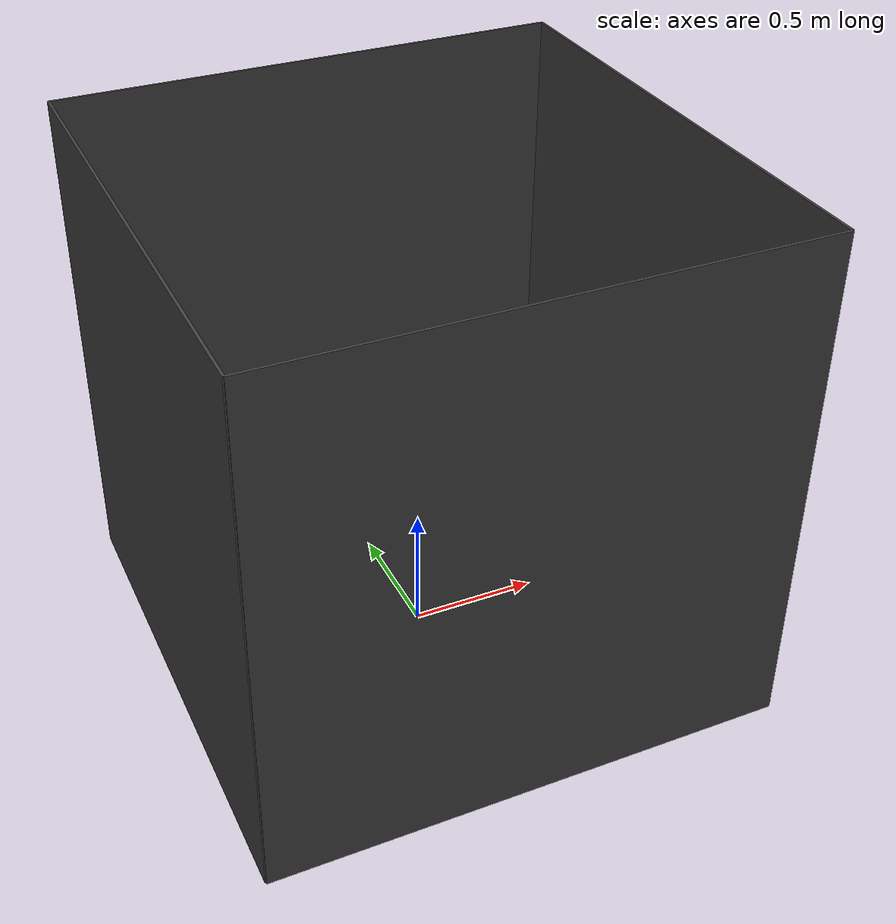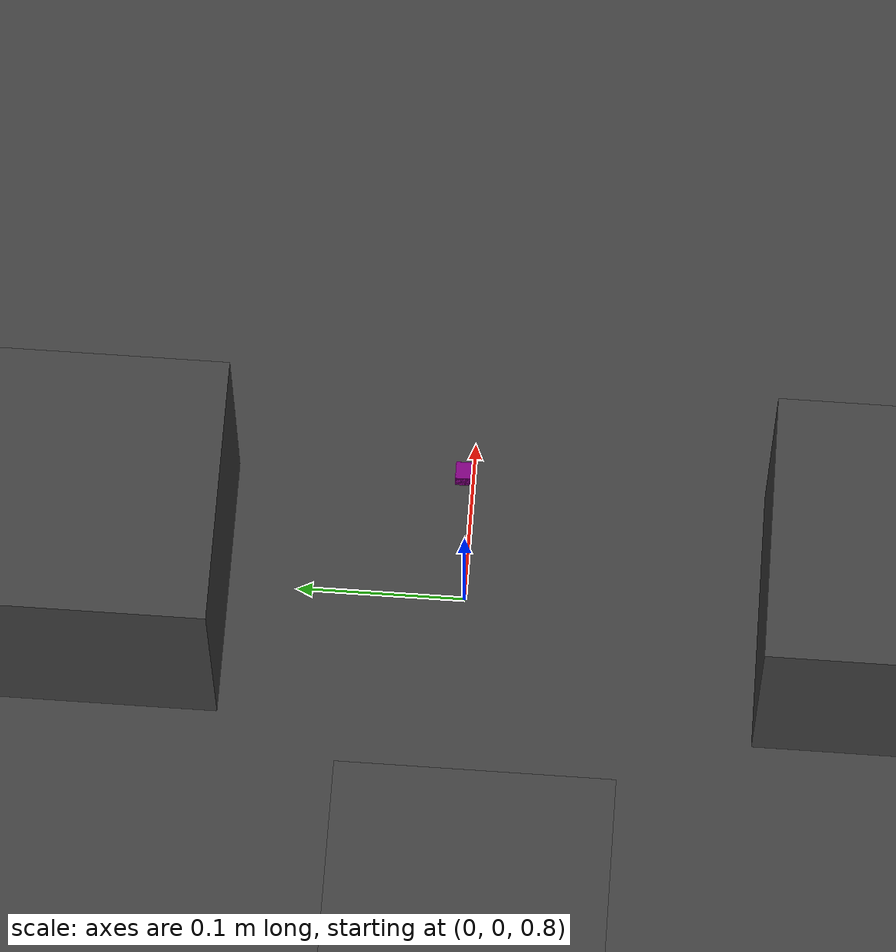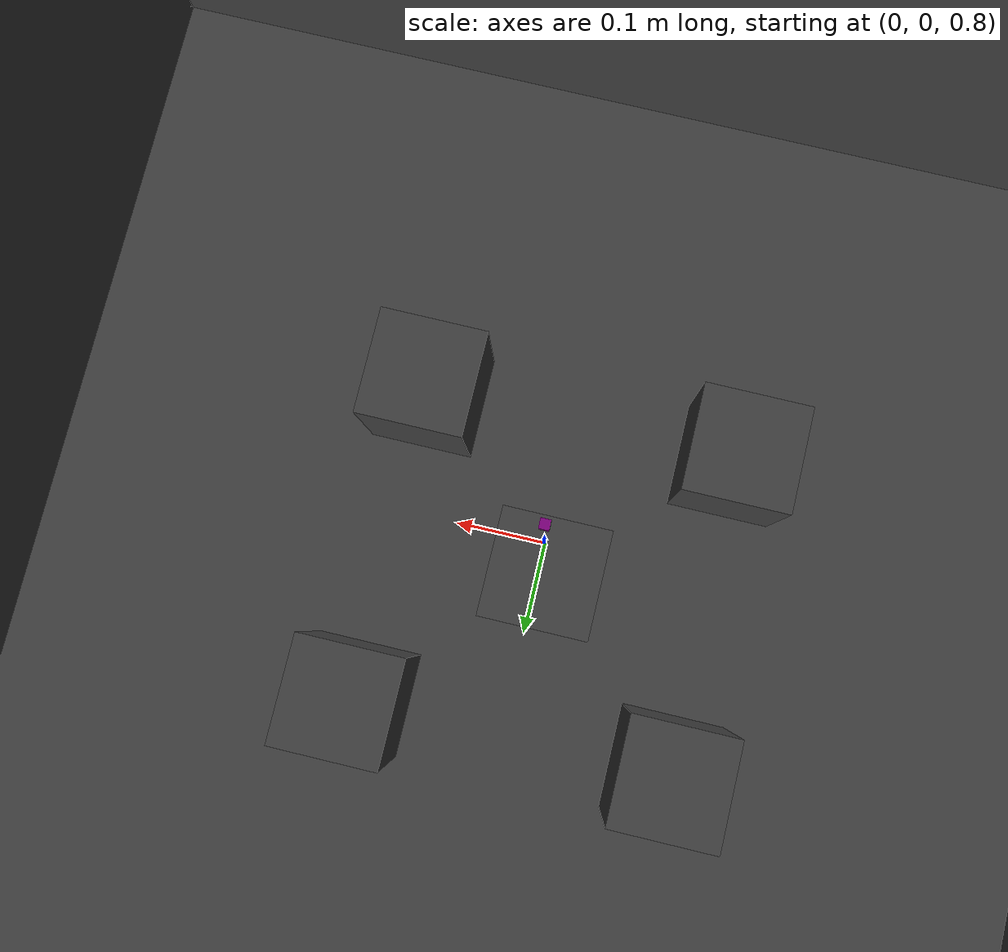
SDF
<?xml version="1.0"?>
<sdf version="1.5">
  <world name="default">
    <!-- Hole environment -->
    <model name="hole_environment">
      <static>true</static>
      <link name="environment">
        <collision name="box1_collision">
          <pose>0.3 0.3 0.1 0 0 0</pose>
          <geometry>
            <box>
              <size>0.2 0.2 0.2</size>
            </box>
          </geometry>
        </collision>
        <visual name="box1_visual">
          <pose>0.3 0.3 0.1 0 0 0</pose>
          <geometry>
            <box>
              <size>0.2 0.2 0.2</size>
            </box>
          </geometry>
          <transparency>0.0</transparency>
          <material>
            <ambient>0.25 0.25 0.25 1.0</ambient>
          </material>
        </visual>

        <collision name="box2_collision">
          <pose>0.3 -0.3 0.1 0 0 0</pose>
          <geometry>
            <box>
              <size>0.2 0.2 0.2</size>
            </box>
          </geometry>
        </collision>
        <visual name="box2_visual">
          <pose>0.3 -0.3 0.1 0 0 0</pose>
          <geometry>
            <box>
              <size>0.2 0.2 0.2</size>
            </box>
          </geometry>
          <transparency>0.0</transparency>
          <material>
            <ambient>0.25 0.25 0.25 1.0</ambient>
          </material>
        </visual>

        <collision name="box3_collision">
          <pose>-0.3 0.3 0.1 0 0 0</pose>
          <geometry>
            <box>
              <size>0.2 0.2 0.2</size>
            </box>
          </geometry>
        </collision>
        <visual name="box3_visual">
          <pose>-0.3 0.3 0.1 0 0 0</pose>
          <geometry>
            <box>
              <size>0.2 0.2 0.2</size>
            </box>
          </geometry>
          <transparency>0.0</transparency>
          <material>
            <ambient>0.25 0.25 0.25 1.0</ambient>
          </material>
        </visual>

        <collision name="box4_collision">
          <pose>-0.3 -0.3 0.1 0 0 0</pose>
          <geometry>
            <box>
              <size>0.2 0.2 0.2</size>
            </box>
          </geometry>
        </collision>
        <visual name="box4_visual">
          <pose>-0.3 -0.3 0.1 0 0 0</pose>
          <geometry>
            <box>
              <size>0.2 0.2 0.2</size>
            </box>
          </geometry>
          <transparency>0.0</transparency>
          <material>
            <ambient>0.25 0.25 0.25 1.0</ambient>
          </material>
        </visual>

        <collision name="box5_collision">
          <pose>-0.0 0.0 0.1 0 0 0</pose>
          <geometry>
            <box>
              <size>0.2 0.2 0.2</size>
            </box>
          </geometry>
        </collision>
        <visual name="box5_visual">
          <pose>0.0 0.0 0.1 0 0 0</pose>
          <geometry>
            <box>
              <size>0.2 0.2 0.2</size>
            </box>
          </geometry>
          <transparency>0.0</transparency>
          <material>
            <ambient>0.25 0.25 0.25 1.0</ambient>
          </material>
        </visual>

        <collision name="leftwall_collision">
          <pose>0.0 1.0 1.0 0 0 0</pose>
          <geometry>
            <box>
              <size>2.0 0.01 2.0</size>
            </box>
          </geometry>
        </collision>
        <visual name="leftwall_visual">
          <pose>0.0 1.0 1.0 0 0 0</pose>
          <geometry>
            <box>
              <size>2.0 0.01 2.0</size>
            </box>
          </geometry>
          <transparency>0.0</transparency>
          <material>
            <ambient>0.25 0.25 0.25 1.0</ambient>
          </material>
        </visual>

        <collision name="rightwall_collision">
          <pose>0.0 -1.0 1.0 0 0 0</pose>
          <geometry>
            <box>
              <size>2.0 0.01 2.0</size>
            </box>
          </geometry>
        </collision>
        <visual name="rightwall_visual">
          <pose>0.0 -1.0 1.0 0 0 0</pose>
          <geometry>
            <box>
              <size>2.0 0.01 2.0</size>
            </box>
          </geometry>
          <transparency>0.0</transparency>
          <material>
            <ambient>0.25 0.25 0.25 1.0</ambient>
          </material>
        </visual>

        <collision name="frontwall_collision">
          <pose>1.0 0.0 1.0 0 0 0</pose>
          <geometry>
            <box>
              <size>0.01 2.0 2.0</size>
            </box>
          </geometry>
        </collision>
        <visual name="frontwall_visual">
          <pose>1.0 0.0 1.0 0 0 0</pose>
          <geometry>
            <box>
              <size>0.01 2.0 2.0</size>
            </box>
          </geometry>
          <transparency>0.0</transparency>
          <material>
            <ambient>0.25 0.25 0.25 1.0</ambient>
          </material>
        </visual>

        <collision name="backwall_collision">
          <pose>-1.0 0.0 1.0 0 0 0</pose>
          <geometry>
            <box>
              <size>0.01 2.0 2.0</size>
            </box>
          </geometry>
        </collision>
        <visual name="backwall_visual">
          <pose>-1.0 0.0 1.0 0 0 0</pose>
          <geometry>
            <box>
              <size>0.01 2.0 2.0</size>
            </box>
          </geometry>
          <transparency>0.0</transparency>
          <material>
            <ambient>0.25 0.25 0.25 1.0</ambient>
          </material>
        </visual>

        <collision name="bottomwall_collision">
          <pose>0.0 0.0 0.0 0 0 0</pose>
          <geometry>
            <box>
              <size>2.0 2.0 0.01</size>
            </box>
          </geometry>
        </collision>
        <visual name="bottomwall_visual">
          <pose>0.0 0.0 0.0 0 0 0</pose>
          <geometry>
            <box>
              <size>2.0 2.0 0.01</size>
            </box>
          </geometry>
          <transparency>0.0</transparency>
          <material>
            <ambient>0.25 0.25 0.25 1.0</ambient>
          </material>
        </visual>
      </link>
    </model>
    <!-- Ring of depth cameras -->
    <model name="kinect">
      <static>true</static>
      <pose>0.0 0.0 1.0 0.0 1.57079632679 0.0</pose>
      <link name="kinect_link">
        <collision name="kinect_collision">
          <geometry>
            <box>
              <size>0.01 0.01 0.01</size>
            </box>
          </geometry>
        </collision>
        <visual name="kinect_visual">
          <geometry>
            <box>
              <size>0.01 0.01 0.01</size>
            </box>
          </geometry>
          <material>
            <ambient>0.5 0.0 0.5 1.0</ambient>
          </material>
        </visual>
        <sensor name="kinect_camera" type="depth">
          <update_rate>10</update_rate>
          <camera>
            <horizontal_fov>1.3962634</horizontal_fov>
            <image>
              <width>400</width>
              <height>400</height>
              <format>R8G8B8</format>
            </image>
            <clip>
              <near>0.05</near>
              <far>5</far>
            </clip>
          </camera>
          <plugin name="camera_plugin" filename="libgazebo_ros_openni_kinect.so">
            <baseline>0.2</baseline>
            <alwaysOn>true</alwaysOn>
            <updateRate>0.0</updateRate>
            <cameraName>kinect_ir</cameraName>
            <imageTopicName>/kinect/depth/image_raw</imageTopicName>
            <cameraInfoTopicName>/kinect/depth/camera_info</cameraInfoTopicName>
            <depthImageTopicName>/kinect/depth/image_raw</depthImageTopicName>
            <depthImageInfoTopicName>/kinect/depth/camera_info</depthImageInfoTopicName>
            <pointCloudTopicName>/kinect/depth/points</pointCloudTopicName>
            <frameName>kinect_link</frameName>
            <pointCloudCutoff>0.05</pointCloudCutoff>
            <distortionK1>0</distortionK1>
            <distortionK2>0</distortionK2>
            <distortionK3>0</distortionK3>
            <distortionT1>0</distortionT1>
            <distortionT2>0</distortionT2>
            <CxPrime>0</CxPrime>
            <Cx>0</Cx>
            <Cy>0</Cy>
            <focalLength>0</focalLength>
            <hackBaseline>0</hackBaseline>
          </plugin>
        </sensor>
      </link>
    </model>
    <model name="projector">
      <static>true</static>
      <pose>0.0 0.0 1.0 0.0 0.0 0.0</pose>
      <link name="projector_link">
        <collision name="projector_collision">
          <geometry>
            <box>
              <size>0.01 0.01 0.01</size>
            </box>
          </geometry>
        </collision>
        <visual name="projector_visual">
          <geometry>
            <box>
              <size>0.01 0.01 0.01</size>
            </box>
          </geometry>
          <material>
            <ambient>0.5 0.0 0.5 1.0</ambient>
          </material>
        </visual>
        <projector name="texture_projector">
          <pose>0 0 1.0 0 0 0</pose>
          <texture>stereo_projection_pattern_high_res_red.png</texture>
          <fov>0.75</fov>
          <near_clip>0.1</near_clip>
          <far_clip>2</far_clip>
        </projector>
      </link>
    </model>
    <model name="realsense">
      <static>true</static>
      <pose>0.0 0.0 1.0 0.0 1.57079632679 0.0</pose>
      <link name="realsense_link">
        <collision name="realsense_collision">
          <geometry>
            <box>
              <size>0.05 0.1 0.05</size>
            </box>
          </geometry>
        </collision>
        <visual name="realsense_visual">
          <geometry>
            <box>
              <size>0.01 0.01 0.01</size>
            </box>
          </geometry>
          <material>
            <ambient>0.5 0.0 0.5 1.0</ambient>
          </material>
        </visual>
        <sensor type="multicamera" name="stereo_camera">
          <update_rate>30.0</update_rate>
          <camera name="left">
            <horizontal_fov>1.3962634</horizontal_fov>
            <image>
              <width>400</width>
              <height>400</height>
              <format>R8G8B8</format>
            </image>
            <clip>
              <near>0.02</near>
              <far>300</far>
            </clip>
            <noise>
              <type>gaussian</type>
              <mean>0.0</mean>
              <stddev>0.05</stddev>
            </noise>
          </camera>
          <camera name="right">
            <pose>0 -0.075 0 0 0 0</pose>
            <horizontal_fov>1.3962634</horizontal_fov>
            <image>
              <width>400</width>
              <height>400</height>
              <format>R8G8B8</format>
            </image>
            <clip>
              <near>0.02</near>
              <far>300</far>
            </clip>
            <noise>
              <type>gaussian</type>
              <mean>0.0</mean>
              <stddev>0.05</stddev>
            </noise>
          </camera>
          <plugin name="stereo_camera_controller" filename="libgazebo_ros_multicamera.so">
            <alwaysOn>true</alwaysOn>
            <updateRate>0.0</updateRate>
            <cameraName>realsense</cameraName>
            <imageTopicName>image_raw</imageTopicName>
            <cameraInfoTopicName>camera_info</cameraInfoTopicName>
            <frameName>realsense_optical_frame</frameName>
            <hackBaseline>0.075</hackBaseline>
            <distortionK1>0.0</distortionK1>
            <distortionK2>0.0</distortionK2>
            <distortionK3>0.0</distortionK3>
            <distortionT1>0.0</distortionT1>
            <distortionT2>0.0</distortionT2>
          </plugin>
        </sensor>
      </link>
    </model>
  </world>
</sdf>
